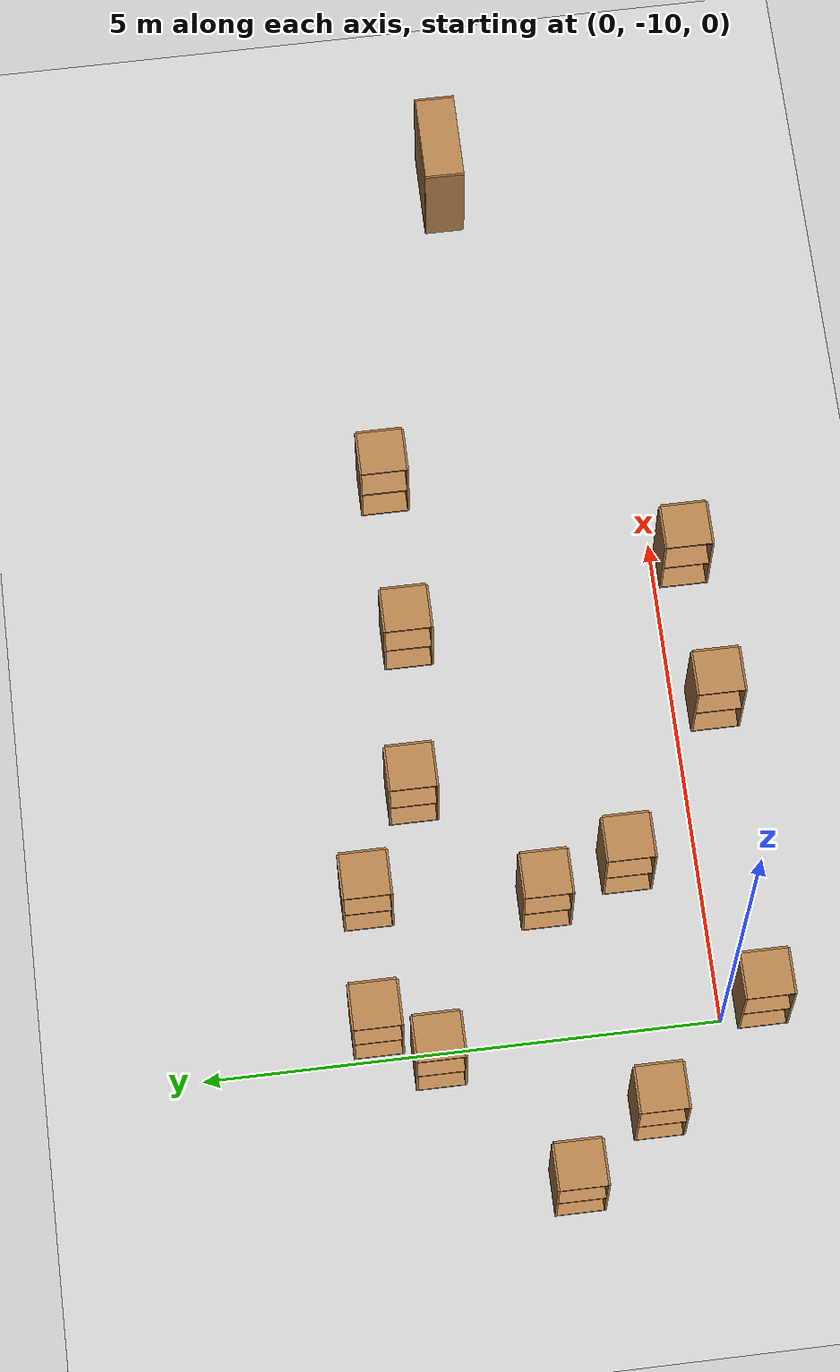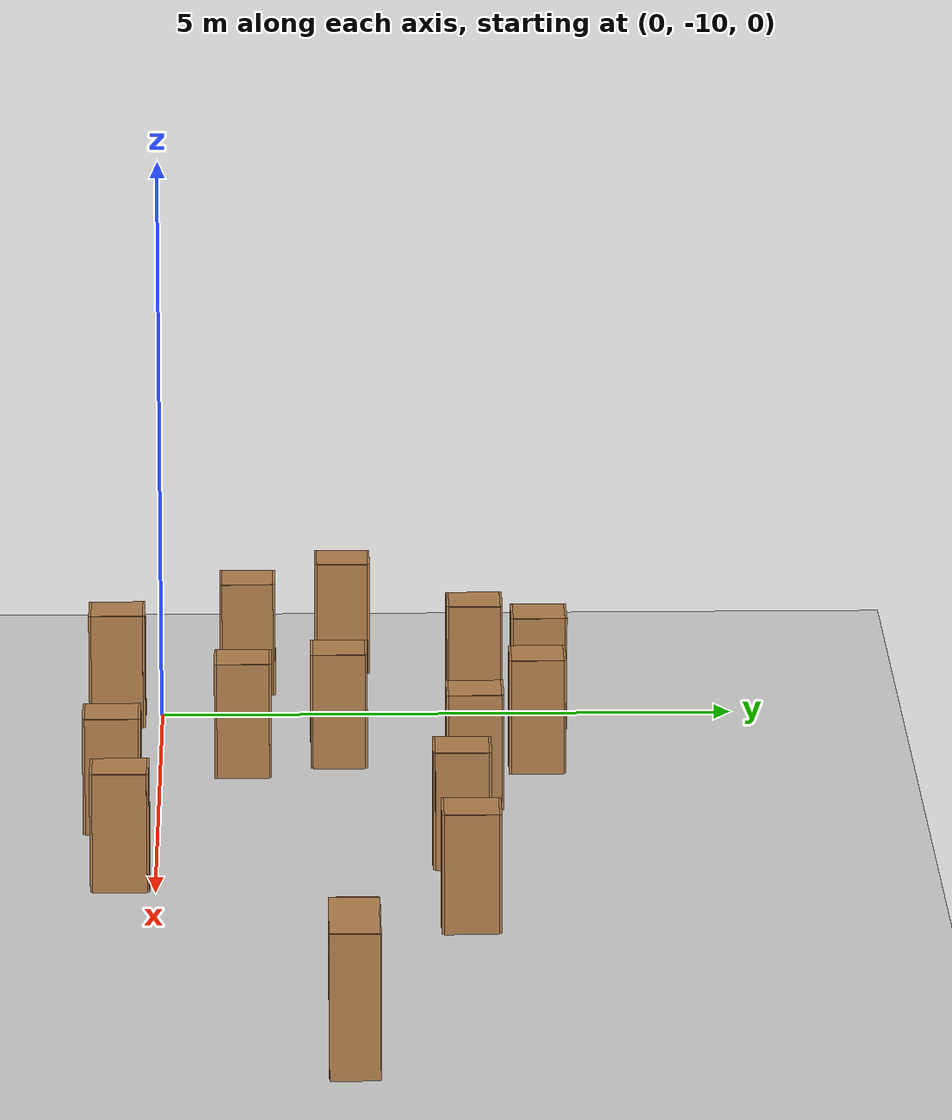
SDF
<sdf version="1.6">
 <world name="default">
  <model name="ground_plane">
   <static>1</static>
   <link name="link">
    <collision name="collision">
     <geometry><plane><normal>0 0 1</normal><size>100 100</size></plane></geometry>
     <surface><friction><ode><mu>100</mu><mu2>50</mu2></ode></friction></surface>
    </collision>
    <visual name="visual">
     <cast_shadows>0</cast_shadows>
     <geometry><plane><normal>0 0 1</normal><size>100 100</size></plane></geometry>
     <material>
      <script><uri>file://media/materials/scripts/gazebo.material</uri><name>Gazebo/Grey</name></script>
     </material>
    </visual>
   </link>
  </model>
  <model name="cabinet_5">
   <static>1</static>
   <link name="cabinet_bottom_plate">
    <inertial>
     <pose>0 0 -1 0 -0 0</pose>
     <inertia><ixx>2.05</ixx><ixy>0</ixy><ixz>0</ixz><iyy>2.05</iyy><iyz>0</iyz><izz>2.05</izz></inertia>
     <mass>25</mass>
    </inertial>
    <collision name="cabinet_bottom_plate_geom">
     <pose>0 0 0.01 0 -0 0</pose>
     <geometry><box><size>0.45 0.45 0.02</size></box></geometry>
    </collision>
    <visual name="cabinet_bottom_plate_geom_visual">
     <pose>0 0 0.01 0 -0 0</pose>
     <geometry><box><size>0.45 0.45 0.02</size></box></geometry>
     <material>
      <script><uri>file://media/materials/scripts/gazebo.material</uri><name>Gazebo/Wood</name></script>
     </material>
    </visual>
    <collision name="cabinet_bottom_plate_geom_cabinet_back_plate">
     <pose>0.235 0 0.51 0 -0 0</pose>
     <geometry><box><size>0.02 0.45 1.02</size></box></geometry>
    </collision>
    <visual name="cabinet_bottom_plate_geom_cabinet_back_plate_visual">
     <pose>0.235 0 0.51 0 -0 0</pose>
     <geometry><box><size>0.02 0.45 1.02</size></box></geometry>
     <material>
      <script><uri>file://media/materials/scripts/gazebo.material</uri><name>Gazebo/Wood</name></script>
     </material>
    </visual>
    <collision name="cabinet_bottom_plate_geom_cabinet_left_plate">
     <pose>0 0.235 0.51 0 -0 0</pose>
     <geometry><box><size>0.45 0.02 1.02</size></box></geometry>
    </collision>
    <visual name="cabinet_bottom_plate_geom_cabinet_left_plate_visual">
     <pose>0 0.235 0.51 0 -0 0</pose>
     <geometry><box><size>0.45 0.02 1.02</size></box></geometry>
     <material>
      <script><uri>file://media/materials/scripts/gazebo.material</uri><name>Gazebo/Wood</name></script>
     </material>
    </visual>
    <collision name="cabinet_bottom_plate_geom_cabinet_middle_plate">
     <pose>0 0 0.51 0 -0 0</pose>
     <geometry><box><size>0.45 0.45 0.02</size></box></geometry>
    </collision>
    <visual name="cabinet_bottom_plate_geom_cabinet_middle_plate_visual">
     <pose>0 0 0.51 0 -0 0</pose>
     <geometry><box><size>0.45 0.45 0.02</size></box></geometry>
     <material>
      <script><uri>file://media/materials/scripts/gazebo.material</uri><name>Gazebo/Wood</name></script>
     </material>
    </visual>
    <collision name="cabinet_bottom_plate_geom_cabinet_right_plate">
     <pose>0 -0.235 0.51 0 -0 0</pose>
     <geometry><box><size>0.45 0.02 1.02</size></box></geometry>
    </collision>
    <visual name="cabinet_bottom_plate_geom_cabinet_right_plate_visual">
     <pose>0 -0.235 0.51 0 -0 0</pose>
     <geometry><box><size>0.45 0.02 1.02</size></box></geometry>
     <material>
      <script><uri>file://media/materials/scripts/gazebo.material</uri><name>Gazebo/Wood</name></script>
     </material>
    </visual>
    <collision name="cabinet_bottom_plate_geom_cabinet_top_plate">
     <pose>0 0 1.01 0 -0 0</pose>
     <geometry><box><size>0.45 0.45 0.02</size></box></geometry>
    </collision>
    <visual name="cabinet_bottom_plate_geom_cabinet_top_plate_visual">
     <pose>0 0 1.01 0 -0 0</pose>
     <geometry><box><size>0.45 0.45 0.02</size></box></geometry>
     <material>
      <script><uri>file://media/materials/scripts/gazebo.material</uri><name>Gazebo/Wood</name></script>
     </material>
    </visual>
   </link>
   <pose>-0.832207 -9.25202 0 0 -0 0</pose>
  </model>
  <model name="cabinet_6">
   <static>1</static>
   <link name="cabinet_bottom_plate">
    <inertial>
     <pose>0 0 -1 0 -0 0</pose>
     <inertia><ixx>2.05</ixx><ixy>0</ixy><ixz>0</ixz><iyy>2.05</iyy><iyz>0</iyz><izz>2.05</izz></inertia>
     <mass>25</mass>
    </inertial>
    <collision name="cabinet_bottom_plate_geom">
     <pose>0 0 0.01 0 -0 0</pose>
     <geometry><box><size>0.45 0.45 0.02</size></box></geometry>
    </collision>
    <visual name="cabinet_bottom_plate_geom_visual">
     <pose>0 0 0.01 0 -0 0</pose>
     <geometry><box><size>0.45 0.45 0.02</size></box></geometry>
     <material>
      <script><uri>file://media/materials/scripts/gazebo.material</uri><name>Gazebo/Wood</name></script>
     </material>
    </visual>
    <collision name="cabinet_bottom_plate_geom_cabinet_back_plate">
     <pose>0.235 0 0.51 0 -0 0</pose>
     <geometry><box><size>0.02 0.45 1.02</size></box></geometry>
    </collision>
    <visual name="cabinet_bottom_plate_geom_cabinet_back_plate_visual">
     <pose>0.235 0 0.51 0 -0 0</pose>
     <geometry><box><size>0.02 0.45 1.02</size></box></geometry>
     <material>
      <script><uri>file://media/materials/scripts/gazebo.material</uri><name>Gazebo/Wood</name></script>
     </material>
    </visual>
    <collision name="cabinet_bottom_plate_geom_cabinet_left_plate">
     <pose>0 0.235 0.51 0 -0 0</pose>
     <geometry><box><size>0.45 0.02 1.02</size></box></geometry>
    </collision>
    <visual name="cabinet_bottom_plate_geom_cabinet_left_plate_visual">
     <pose>0 0.235 0.51 0 -0 0</pose>
     <geometry><box><size>0.45 0.02 1.02</size></box></geometry>
     <material>
      <script><uri>file://media/materials/scripts/gazebo.material</uri><name>Gazebo/Wood</name></script>
     </material>
    </visual>
    <collision name="cabinet_bottom_plate_geom_cabinet_middle_plate">
     <pose>0 0 0.51 0 -0 0</pose>
     <geometry><box><size>0.45 0.45 0.02</size></box></geometry>
    </collision>
    <visual name="cabinet_bottom_plate_geom_cabinet_middle_plate_visual">
     <pose>0 0 0.51 0 -0 0</pose>
     <geometry><box><size>0.45 0.45 0.02</size></box></geometry>
     <material>
      <script><uri>file://media/materials/scripts/gazebo.material</uri><name>Gazebo/Wood</name></script>
     </material>
    </visual>
    <collision name="cabinet_bottom_plate_geom_cabinet_right_plate">
     <pose>0 -0.235 0.51 0 -0 0</pose>
     <geometry><box><size>0.45 0.02 1.02</size></box></geometry>
    </collision>
    <visual name="cabinet_bottom_plate_geom_cabinet_right_plate_visual">
     <pose>0 -0.235 0.51 0 -0 0</pose>
     <geometry><box><size>0.45 0.02 1.02</size></box></geometry>
     <material>
      <script><uri>file://media/materials/scripts/gazebo.material</uri><name>Gazebo/Wood</name></script>
     </material>
    </visual>
    <collision name="cabinet_bottom_plate_geom_cabinet_top_plate">
     <pose>0 0 1.01 0 -0 0</pose>
     <geometry><box><size>0.45 0.45 0.02</size></box></geometry>
    </collision>
    <visual name="cabinet_bottom_plate_geom_cabinet_top_plate_visual">
     <pose>0 0 1.01 0 -0 0</pose>
     <geometry><box><size>0.45 0.45 0.02</size></box></geometry>
     <material>
      <script><uri>file://media/materials/scripts/gazebo.material</uri><name>Gazebo/Wood</name></script>
     </material>
    </visual>
   </link>
   <pose>0.135041 -10.3908 0 0 -0 0</pose>
  </model>
  <model name="cabinet_7">
   <static>1</static>
   <link name="cabinet_bottom_plate">
    <inertial>
     <pose>0 0 -1 0 -0 0</pose>
     <inertia><ixx>2.05</ixx><ixy>0</ixy><ixz>0</ixz><iyy>2.05</iyy><iyz>0</iyz><izz>2.05</izz></inertia>
     <mass>25</mass>
    </inertial>
    <collision name="cabinet_bottom_plate_geom">
     <pose>0 0 0.01 0 -0 0</pose>
     <geometry><box><size>0.45 0.45 0.02</size></box></geometry>
    </collision>
    <visual name="cabinet_bottom_plate_geom_visual">
     <pose>0 0 0.01 0 -0 0</pose>
     <geometry><box><size>0.45 0.45 0.02</size></box></geometry>
     <material>
      <script><uri>file://media/materials/scripts/gazebo.material</uri><name>Gazebo/Wood</name></script>
     </material>
    </visual>
    <collision name="cabinet_bottom_plate_geom_cabinet_back_plate">
     <pose>0.235 0 0.51 0 -0 0</pose>
     <geometry><box><size>0.02 0.45 1.02</size></box></geometry>
    </collision>
    <visual name="cabinet_bottom_plate_geom_cabinet_back_plate_visual">
     <pose>0.235 0 0.51 0 -0 0</pose>
     <geometry><box><size>0.02 0.45 1.02</size></box></geometry>
     <material>
      <script><uri>file://media/materials/scripts/gazebo.material</uri><name>Gazebo/Wood</name></script>
     </material>
    </visual>
    <collision name="cabinet_bottom_plate_geom_cabinet_left_plate">
     <pose>0 0.235 0.51 0 -0 0</pose>
     <geometry><box><size>0.45 0.02 1.02</size></box></geometry>
    </collision>
    <visual name="cabinet_bottom_plate_geom_cabinet_left_plate_visual">
     <pose>0 0.235 0.51 0 -0 0</pose>
     <geometry><box><size>0.45 0.02 1.02</size></box></geometry>
     <material>
      <script><uri>file://media/materials/scripts/gazebo.material</uri><name>Gazebo/Wood</name></script>
     </material>
    </visual>
    <collision name="cabinet_bottom_plate_geom_cabinet_middle_plate">
     <pose>0 0 0.51 0 -0 0</pose>
     <geometry><box><size>0.45 0.45 0.02</size></box></geometry>
    </collision>
    <visual name="cabinet_bottom_plate_geom_cabinet_middle_plate_visual">
     <pose>0 0 0.51 0 -0 0</pose>
     <geometry><box><size>0.45 0.45 0.02</size></box></geometry>
     <material>
      <script><uri>file://media/materials/scripts/gazebo.material</uri><name>Gazebo/Wood</name></script>
     </material>
    </visual>
    <collision name="cabinet_bottom_plate_geom_cabinet_right_plate">
     <pose>0 -0.235 0.51 0 -0 0</pose>
     <geometry><box><size>0.45 0.02 1.02</size></box></geometry>
    </collision>
    <visual name="cabinet_bottom_plate_geom_cabinet_right_plate_visual">
     <pose>0 -0.235 0.51 0 -0 0</pose>
     <geometry><box><size>0.45 0.02 1.02</size></box></geometry>
     <material>
      <script><uri>file://media/materials/scripts/gazebo.material</uri><name>Gazebo/Wood</name></script>
     </material>
    </visual>
    <collision name="cabinet_bottom_plate_geom_cabinet_top_plate">
     <pose>0 0 1.01 0 -0 0</pose>
     <geometry><box><size>0.45 0.45 0.02</size></box></geometry>
    </collision>
    <visual name="cabinet_bottom_plate_geom_cabinet_top_plate_visual">
     <pose>0 0 1.01 0 -0 0</pose>
     <geometry><box><size>0.45 0.45 0.02</size></box></geometry>
     <material>
      <script><uri>file://media/materials/scripts/gazebo.material</uri><name>Gazebo/Wood</name></script>
     </material>
    </visual>
   </link>
   <pose>1.62665 -9.28432 0 0 -0 0</pose>
  </model>
  <model name="cabinet_8">
   <static>1</static>
   <link name="cabinet_bottom_plate">
    <inertial>
     <pose>0 0 -1 0 -0 0</pose>
     <inertia><ixx>2.05</ixx><ixy>0</ixy><ixz>0</ixz><iyy>2.05</iyy><iyz>0</iyz><izz>2.05</izz></inertia>
     <mass>25</mass>
    </inertial>
    <collision name="cabinet_bottom_plate_geom">
     <pose>0 0 0.01 0 -0 0</pose>
     <geometry><box><size>0.45 0.45 0.02</size></box></geometry>
    </collision>
    <visual name="cabinet_bottom_plate_geom_visual">
     <pose>0 0 0.01 0 -0 0</pose>
     <geometry><box><size>0.45 0.45 0.02</size></box></geometry>
     <material>
      <script><uri>file://media/materials/scripts/gazebo.material</uri><name>Gazebo/Wood</name></script>
     </material>
    </visual>
    <collision name="cabinet_bottom_plate_geom_cabinet_back_plate">
     <pose>0.235 0 0.51 0 -0 0</pose>
     <geometry><box><size>0.02 0.45 1.02</size></box></geometry>
    </collision>
    <visual name="cabinet_bottom_plate_geom_cabinet_back_plate_visual">
     <pose>0.235 0 0.51 0 -0 0</pose>
     <geometry><box><size>0.02 0.45 1.02</size></box></geometry>
     <material>
      <script><uri>file://media/materials/scripts/gazebo.material</uri><name>Gazebo/Wood</name></script>
     </material>
    </visual>
    <collision name="cabinet_bottom_plate_geom_cabinet_left_plate">
     <pose>0 0.235 0.51 0 -0 0</pose>
     <geometry><box><size>0.45 0.02 1.02</size></box></geometry>
    </collision>
    <visual name="cabinet_bottom_plate_geom_cabinet_left_plate_visual">
     <pose>0 0.235 0.51 0 -0 0</pose>
     <geometry><box><size>0.45 0.02 1.02</size></box></geometry>
     <material>
      <script><uri>file://media/materials/scripts/gazebo.material</uri><name>Gazebo/Wood</name></script>
     </material>
    </visual>
    <collision name="cabinet_bottom_plate_geom_cabinet_middle_plate">
     <pose>0 0 0.51 0 -0 0</pose>
     <geometry><box><size>0.45 0.45 0.02</size></box></geometry>
    </collision>
    <visual name="cabinet_bottom_plate_geom_cabinet_middle_plate_visual">
     <pose>0 0 0.51 0 -0 0</pose>
     <geometry><box><size>0.45 0.45 0.02</size></box></geometry>
     <material>
      <script><uri>file://media/materials/scripts/gazebo.material</uri><name>Gazebo/Wood</name></script>
     </material>
    </visual>
    <collision name="cabinet_bottom_plate_geom_cabinet_right_plate">
     <pose>0 -0.235 0.51 0 -0 0</pose>
     <geometry><box><size>0.45 0.02 1.02</size></box></geometry>
    </collision>
    <visual name="cabinet_bottom_plate_geom_cabinet_right_plate_visual">
     <pose>0 -0.235 0.51 0 -0 0</pose>
     <geometry><box><size>0.45 0.02 1.02</size></box></geometry>
     <material>
      <script><uri>file://media/materials/scripts/gazebo.material</uri><name>Gazebo/Wood</name></script>
     </material>
    </visual>
    <collision name="cabinet_bottom_plate_geom_cabinet_top_plate">
     <pose>0 0 1.01 0 -0 0</pose>
     <geometry><box><size>0.45 0.45 0.02</size></box></geometry>
    </collision>
    <visual name="cabinet_bottom_plate_geom_cabinet_top_plate_visual">
     <pose>0 0 1.01 0 -0 0</pose>
     <geometry><box><size>0.45 0.45 0.02</size></box></geometry>
     <material>
      <script><uri>file://media/materials/scripts/gazebo.material</uri><name>Gazebo/Wood</name></script>
     </material>
    </visual>
   </link>
   <pose>3.19671 -10.3835 0 0 -0 0</pose>
  </model>
  <model name="cabinet_9">
   <static>1</static>
   <link name="cabinet_bottom_plate">
    <inertial>
     <pose>0 0 -1 0 -0 0</pose>
     <inertia><ixx>2.05</ixx><ixy>0</ixy><ixz>0</ixz><iyy>2.05</iyy><iyz>0</iyz><izz>2.05</izz></inertia>
     <mass>25</mass>
    </inertial>
    <collision name="cabinet_bottom_plate_geom">
     <pose>0 0 0.01 0 -0 0</pose>
     <geometry><box><size>0.45 0.45 0.02</size></box></geometry>
    </collision>
    <visual name="cabinet_bottom_plate_geom_visual">
     <pose>0 0 0.01 0 -0 0</pose>
     <geometry><box><size>0.45 0.45 0.02</size></box></geometry>
     <material>
      <script><uri>file://media/materials/scripts/gazebo.material</uri><name>Gazebo/Wood</name></script>
     </material>
    </visual>
    <collision name="cabinet_bottom_plate_geom_cabinet_back_plate">
     <pose>0.235 0 0.51 0 -0 0</pose>
     <geometry><box><size>0.02 0.45 1.02</size></box></geometry>
    </collision>
    <visual name="cabinet_bottom_plate_geom_cabinet_back_plate_visual">
     <pose>0.235 0 0.51 0 -0 0</pose>
     <geometry><box><size>0.02 0.45 1.02</size></box></geometry>
     <material>
      <script><uri>file://media/materials/scripts/gazebo.material</uri><name>Gazebo/Wood</name></script>
     </material>
    </visual>
    <collision name="cabinet_bottom_plate_geom_cabinet_left_plate">
     <pose>0 0.235 0.51 0 -0 0</pose>
     <geometry><box><size>0.45 0.02 1.02</size></box></geometry>
    </collision>
    <visual name="cabinet_bottom_plate_geom_cabinet_left_plate_visual">
     <pose>0 0.235 0.51 0 -0 0</pose>
     <geometry><box><size>0.45 0.02 1.02</size></box></geometry>
     <material>
      <script><uri>file://media/materials/scripts/gazebo.material</uri><name>Gazebo/Wood</name></script>
     </material>
    </visual>
    <collision name="cabinet_bottom_plate_geom_cabinet_middle_plate">
     <pose>0 0 0.51 0 -0 0</pose>
     <geometry><box><size>0.45 0.45 0.02</size></box></geometry>
    </collision>
    <visual name="cabinet_bottom_plate_geom_cabinet_middle_plate_visual">
     <pose>0 0 0.51 0 -0 0</pose>
     <geometry><box><size>0.45 0.45 0.02</size></box></geometry>
     <material>
      <script><uri>file://media/materials/scripts/gazebo.material</uri><name>Gazebo/Wood</name></script>
     </material>
    </visual>
    <collision name="cabinet_bottom_plate_geom_cabinet_right_plate">
     <pose>0 -0.235 0.51 0 -0 0</pose>
     <geometry><box><size>0.45 0.02 1.02</size></box></geometry>
    </collision>
    <visual name="cabinet_bottom_plate_geom_cabinet_right_plate_visual">
     <pose>0 -0.235 0.51 0 -0 0</pose>
     <geometry><box><size>0.45 0.02 1.02</size></box></geometry>
     <material>
      <script><uri>file://media/materials/scripts/gazebo.material</uri><name>Gazebo/Wood</name></script>
     </material>
    </visual>
    <collision name="cabinet_bottom_plate_geom_cabinet_top_plate">
     <pose>0 0 1.01 0 -0 0</pose>
     <geometry><box><size>0.45 0.45 0.02</size></box></geometry>
    </collision>
    <visual name="cabinet_bottom_plate_geom_cabinet_top_plate_visual">
     <pose>0 0 1.01 0 -0 0</pose>
     <geometry><box><size>0.45 0.45 0.02</size></box></geometry>
     <material>
      <script><uri>file://media/materials/scripts/gazebo.material</uri><name>Gazebo/Wood</name></script>
     </material>
    </visual>
   </link>
   <pose>4.75602 -10.2927 0 0 -0 0</pose>
  </model>
  <model name="cabinet_16">
   <static>1</static>
   <link name="cabinet_bottom_plate">
    <inertial>
     <pose>0 0 -1 0 -0 0</pose>
     <inertia><ixx>2.05</ixx><ixy>0</ixy><ixz>0</ixz><iyy>2.05</iyy><iyz>0</iyz><izz>2.05</izz></inertia>
     <mass>25</mass>
    </inertial>
    <collision name="cabinet_bottom_plate_geom">
     <pose>0 0 0.01 0 -0 0</pose>
     <geometry><box><size>0.45 0.45 0.02</size></box></geometry>
    </collision>
    <visual name="cabinet_bottom_plate_geom_visual">
     <pose>0 0 0.01 0 -0 0</pose>
     <geometry><box><size>0.45 0.45 0.02</size></box></geometry>
     <material>
      <script><uri>file://media/materials/scripts/gazebo.material</uri><name>Gazebo/Wood</name></script>
     </material>
    </visual>
    <collision name="cabinet_bottom_plate_geom_cabinet_back_plate">
     <pose>0.235 0 0.51 0 -0 0</pose>
     <geometry><box><size>0.02 0.45 1.02</size></box></geometry>
    </collision>
    <visual name="cabinet_bottom_plate_geom_cabinet_back_plate_visual">
     <pose>0.235 0 0.51 0 -0 0</pose>
     <geometry><box><size>0.02 0.45 1.02</size></box></geometry>
     <material>
      <script><uri>file://media/materials/scripts/gazebo.material</uri><name>Gazebo/Wood</name></script>
     </material>
    </visual>
    <collision name="cabinet_bottom_plate_geom_cabinet_left_plate">
     <pose>0 0.235 0.51 0 -0 0</pose>
     <geometry><box><size>0.45 0.02 1.02</size></box></geometry>
    </collision>
    <visual name="cabinet_bottom_plate_geom_cabinet_left_plate_visual">
     <pose>0 0.235 0.51 0 -0 0</pose>
     <geometry><box><size>0.45 0.02 1.02</size></box></geometry>
     <material>
      <script><uri>file://media/materials/scripts/gazebo.material</uri><name>Gazebo/Wood</name></script>
     </material>
    </visual>
    <collision name="cabinet_bottom_plate_geom_cabinet_middle_plate">
     <pose>0 0 0.51 0 -0 0</pose>
     <geometry><box><size>0.45 0.45 0.02</size></box></geometry>
    </collision>
    <visual name="cabinet_bottom_plate_geom_cabinet_middle_plate_visual">
     <pose>0 0 0.51 0 -0 0</pose>
     <geometry><box><size>0.45 0.45 0.02</size></box></geometry>
     <material>
      <script><uri>file://media/materials/scripts/gazebo.material</uri><name>Gazebo/Wood</name></script>
     </material>
    </visual>
    <collision name="cabinet_bottom_plate_geom_cabinet_right_plate">
     <pose>0 -0.235 0.51 0 -0 0</pose>
     <geometry><box><size>0.45 0.02 1.02</size></box></geometry>
    </collision>
    <visual name="cabinet_bottom_plate_geom_cabinet_right_plate_visual">
     <pose>0 -0.235 0.51 0 -0 0</pose>
     <geometry><box><size>0.45 0.02 1.02</size></box></geometry>
     <material>
      <script><uri>file://media/materials/scripts/gazebo.material</uri><name>Gazebo/Wood</name></script>
     </material>
    </visual>
    <collision name="cabinet_bottom_plate_geom_cabinet_top_plate">
     <pose>0 0 1.01 0 -0 0</pose>
     <geometry><box><size>0.45 0.45 0.02</size></box></geometry>
    </collision>
    <visual name="cabinet_bottom_plate_geom_cabinet_top_plate_visual">
     <pose>0 0 1.01 0 -0 0</pose>
     <geometry><box><size>0.45 0.45 0.02</size></box></geometry>
     <material>
      <script><uri>file://media/materials/scripts/gazebo.material</uri><name>Gazebo/Wood</name></script>
     </material>
    </visual>
   </link>
   <pose>-1.46317 -8.40915 0 0 -0 0</pose>
  </model>
  <model name="cabinet_17">
   <static>1</static>
   <link name="cabinet_bottom_plate">
    <inertial>
     <pose>0 0 -1 0 -0 0</pose>
     <inertia><ixx>2.05</ixx><ixy>0</ixy><ixz>0</ixz><iyy>2.05</iyy><iyz>0</iyz><izz>2.05</izz></inertia>
     <mass>25</mass>
    </inertial>
    <collision name="cabinet_bottom_plate_geom">
     <pose>0 0 0.01 0 -0 0</pose>
     <geometry><box><size>0.45 0.45 0.02</size></box></geometry>
    </collision>
    <visual name="cabinet_bottom_plate_geom_visual">
     <pose>0 0 0.01 0 -0 0</pose>
     <geometry><box><size>0.45 0.45 0.02</size></box></geometry>
     <material>
      <script><uri>file://media/materials/scripts/gazebo.material</uri><name>Gazebo/Wood</name></script>
     </material>
    </visual>
    <collision name="cabinet_bottom_plate_geom_cabinet_back_plate">
     <pose>0.235 0 0.51 0 -0 0</pose>
     <geometry><box><size>0.02 0.45 1.02</size></box></geometry>
    </collision>
    <visual name="cabinet_bottom_plate_geom_cabinet_back_plate_visual">
     <pose>0.235 0 0.51 0 -0 0</pose>
     <geometry><box><size>0.02 0.45 1.02</size></box></geometry>
     <material>
      <script><uri>file://media/materials/scripts/gazebo.material</uri><name>Gazebo/Wood</name></script>
     </material>
    </visual>
    <collision name="cabinet_bottom_plate_geom_cabinet_left_plate">
     <pose>0 0.235 0.51 0 -0 0</pose>
     <geometry><box><size>0.45 0.02 1.02</size></box></geometry>
    </collision>
    <visual name="cabinet_bottom_plate_geom_cabinet_left_plate_visual">
     <pose>0 0.235 0.51 0 -0 0</pose>
     <geometry><box><size>0.45 0.02 1.02</size></box></geometry>
     <material>
      <script><uri>file://media/materials/scripts/gazebo.material</uri><name>Gazebo/Wood</name></script>
     </material>
    </visual>
    <collision name="cabinet_bottom_plate_geom_cabinet_middle_plate">
     <pose>0 0 0.51 0 -0 0</pose>
     <geometry><box><size>0.45 0.45 0.02</size></box></geometry>
    </collision>
    <visual name="cabinet_bottom_plate_geom_cabinet_middle_plate_visual">
     <pose>0 0 0.51 0 -0 0</pose>
     <geometry><box><size>0.45 0.45 0.02</size></box></geometry>
     <material>
      <script><uri>file://media/materials/scripts/gazebo.material</uri><name>Gazebo/Wood</name></script>
     </material>
    </visual>
    <collision name="cabinet_bottom_plate_geom_cabinet_right_plate">
     <pose>0 -0.235 0.51 0 -0 0</pose>
     <geometry><box><size>0.45 0.02 1.02</size></box></geometry>
    </collision>
    <visual name="cabinet_bottom_plate_geom_cabinet_right_plate_visual">
     <pose>0 -0.235 0.51 0 -0 0</pose>
     <geometry><box><size>0.45 0.02 1.02</size></box></geometry>
     <material>
      <script><uri>file://media/materials/scripts/gazebo.material</uri><name>Gazebo/Wood</name></script>
     </material>
    </visual>
    <collision name="cabinet_bottom_plate_geom_cabinet_top_plate">
     <pose>0 0 1.01 0 -0 0</pose>
     <geometry><box><size>0.45 0.45 0.02</size></box></geometry>
    </collision>
    <visual name="cabinet_bottom_plate_geom_cabinet_top_plate_visual">
     <pose>0 0 1.01 0 -0 0</pose>
     <geometry><box><size>0.45 0.45 0.02</size></box></geometry>
     <material>
      <script><uri>file://media/materials/scripts/gazebo.material</uri><name>Gazebo/Wood</name></script>
     </material>
    </visual>
   </link>
   <pose>-0.100328 -7.25662 0 0 -0 0</pose>
  </model>
  <model name="cabinet_18">
   <static>1</static>
   <link name="cabinet_bottom_plate">
    <inertial>
     <pose>0 0 -1 0 -0 0</pose>
     <inertia><ixx>2.05</ixx><ixy>0</ixy><ixz>0</ixz><iyy>2.05</iyy><iyz>0</iyz><izz>2.05</izz></inertia>
     <mass>25</mass>
    </inertial>
    <collision name="cabinet_bottom_plate_geom">
     <pose>0 0 0.01 0 -0 0</pose>
     <geometry><box><size>0.45 0.45 0.02</size></box></geometry>
    </collision>
    <visual name="cabinet_bottom_plate_geom_visual">
     <pose>0 0 0.01 0 -0 0</pose>
     <geometry><box><size>0.45 0.45 0.02</size></box></geometry>
     <material>
      <script><uri>file://media/materials/scripts/gazebo.material</uri><name>Gazebo/Wood</name></script>
     </material>
    </visual>
    <collision name="cabinet_bottom_plate_geom_cabinet_back_plate">
     <pose>0.235 0 0.51 0 -0 0</pose>
     <geometry><box><size>0.02 0.45 1.02</size></box></geometry>
    </collision>
    <visual name="cabinet_bottom_plate_geom_cabinet_back_plate_visual">
     <pose>0.235 0 0.51 0 -0 0</pose>
     <geometry><box><size>0.02 0.45 1.02</size></box></geometry>
     <material>
      <script><uri>file://media/materials/scripts/gazebo.material</uri><name>Gazebo/Wood</name></script>
     </material>
    </visual>
    <collision name="cabinet_bottom_plate_geom_cabinet_left_plate">
     <pose>0 0.235 0.51 0 -0 0</pose>
     <geometry><box><size>0.45 0.02 1.02</size></box></geometry>
    </collision>
    <visual name="cabinet_bottom_plate_geom_cabinet_left_plate_visual">
     <pose>0 0.235 0.51 0 -0 0</pose>
     <geometry><box><size>0.45 0.02 1.02</size></box></geometry>
     <material>
      <script><uri>file://media/materials/scripts/gazebo.material</uri><name>Gazebo/Wood</name></script>
     </material>
    </visual>
    <collision name="cabinet_bottom_plate_geom_cabinet_middle_plate">
     <pose>0 0 0.51 0 -0 0</pose>
     <geometry><box><size>0.45 0.45 0.02</size></box></geometry>
    </collision>
    <visual name="cabinet_bottom_plate_geom_cabinet_middle_plate_visual">
     <pose>0 0 0.51 0 -0 0</pose>
     <geometry><box><size>0.45 0.45 0.02</size></box></geometry>
     <material>
      <script><uri>file://media/materials/scripts/gazebo.material</uri><name>Gazebo/Wood</name></script>
     </material>
    </visual>
    <collision name="cabinet_bottom_plate_geom_cabinet_right_plate">
     <pose>0 -0.235 0.51 0 -0 0</pose>
     <geometry><box><size>0.45 0.02 1.02</size></box></geometry>
    </collision>
    <visual name="cabinet_bottom_plate_geom_cabinet_right_plate_visual">
     <pose>0 -0.235 0.51 0 -0 0</pose>
     <geometry><box><size>0.45 0.02 1.02</size></box></geometry>
     <material>
      <script><uri>file://media/materials/scripts/gazebo.material</uri><name>Gazebo/Wood</name></script>
     </material>
    </visual>
    <collision name="cabinet_bottom_plate_geom_cabinet_top_plate">
     <pose>0 0 1.01 0 -0 0</pose>
     <geometry><box><size>0.45 0.45 0.02</size></box></geometry>
    </collision>
    <visual name="cabinet_bottom_plate_geom_cabinet_top_plate_visual">
     <pose>0 0 1.01 0 -0 0</pose>
     <geometry><box><size>0.45 0.45 0.02</size></box></geometry>
     <material>
      <script><uri>file://media/materials/scripts/gazebo.material</uri><name>Gazebo/Wood</name></script>
     </material>
    </visual>
   </link>
   <pose>1.36028 -8.45727 0 0 -0 0</pose>
  </model>
  <model name="cabinet_19">
   <static>1</static>
   <link name="cabinet_bottom_plate">
    <inertial>
     <pose>0 0 -1 0 -0 0</pose>
     <inertia><ixx>2.05</ixx><ixy>0</ixy><ixz>0</ixz><iyy>2.05</iyy><iyz>0</iyz><izz>2.05</izz></inertia>
     <mass>25</mass>
    </inertial>
    <collision name="cabinet_bottom_plate_geom">
     <pose>0 0 0.01 0 -0 0</pose>
     <geometry><box><size>0.45 0.45 0.02</size></box></geometry>
    </collision>
    <visual name="cabinet_bottom_plate_geom_visual">
     <pose>0 0 0.01 0 -0 0</pose>
     <geometry><box><size>0.45 0.45 0.02</size></box></geometry>
     <material>
      <script><uri>file://media/materials/scripts/gazebo.material</uri><name>Gazebo/Wood</name></script>
     </material>
    </visual>
    <collision name="cabinet_bottom_plate_geom_cabinet_back_plate">
     <pose>0.235 0 0.51 0 -0 0</pose>
     <geometry><box><size>0.02 0.45 1.02</size></box></geometry>
    </collision>
    <visual name="cabinet_bottom_plate_geom_cabinet_back_plate_visual">
     <pose>0.235 0 0.51 0 -0 0</pose>
     <geometry><box><size>0.02 0.45 1.02</size></box></geometry>
     <material>
      <script><uri>file://media/materials/scripts/gazebo.material</uri><name>Gazebo/Wood</name></script>
     </material>
    </visual>
    <collision name="cabinet_bottom_plate_geom_cabinet_left_plate">
     <pose>0 0.235 0.51 0 -0 0</pose>
     <geometry><box><size>0.45 0.02 1.02</size></box></geometry>
    </collision>
    <visual name="cabinet_bottom_plate_geom_cabinet_left_plate_visual">
     <pose>0 0.235 0.51 0 -0 0</pose>
     <geometry><box><size>0.45 0.02 1.02</size></box></geometry>
     <material>
      <script><uri>file://media/materials/scripts/gazebo.material</uri><name>Gazebo/Wood</name></script>
     </material>
    </visual>
    <collision name="cabinet_bottom_plate_geom_cabinet_middle_plate">
     <pose>0 0 0.51 0 -0 0</pose>
     <geometry><box><size>0.45 0.45 0.02</size></box></geometry>
    </collision>
    <visual name="cabinet_bottom_plate_geom_cabinet_middle_plate_visual">
     <pose>0 0 0.51 0 -0 0</pose>
     <geometry><box><size>0.45 0.45 0.02</size></box></geometry>
     <material>
      <script><uri>file://media/materials/scripts/gazebo.material</uri><name>Gazebo/Wood</name></script>
     </material>
    </visual>
    <collision name="cabinet_bottom_plate_geom_cabinet_right_plate">
     <pose>0 -0.235 0.51 0 -0 0</pose>
     <geometry><box><size>0.45 0.02 1.02</size></box></geometry>
    </collision>
    <visual name="cabinet_bottom_plate_geom_cabinet_right_plate_visual">
     <pose>0 -0.235 0.51 0 -0 0</pose>
     <geometry><box><size>0.45 0.02 1.02</size></box></geometry>
     <material>
      <script><uri>file://media/materials/scripts/gazebo.material</uri><name>Gazebo/Wood</name></script>
     </material>
    </visual>
    <collision name="cabinet_bottom_plate_geom_cabinet_top_plate">
     <pose>0 0 1.01 0 -0 0</pose>
     <geometry><box><size>0.45 0.45 0.02</size></box></geometry>
    </collision>
    <visual name="cabinet_bottom_plate_geom_cabinet_top_plate_visual">
     <pose>0 0 1.01 0 -0 0</pose>
     <geometry><box><size>0.45 0.45 0.02</size></box></geometry>
     <material>
      <script><uri>file://media/materials/scripts/gazebo.material</uri><name>Gazebo/Wood</name></script>
     </material>
    </visual>
   </link>
   <pose>2.58205 -7.30976 0 0 -0 0</pose>
  </model>
  <model name="cabinet_20">
   <static>1</static>
   <link name="cabinet_bottom_plate">
    <inertial>
     <pose>0 0 -1 0 -0 0</pose>
     <inertia><ixx>2.05</ixx><ixy>0</ixy><ixz>0</ixz><iyy>2.05</iyy><iyz>0</iyz><izz>2.05</izz></inertia>
     <mass>25</mass>
    </inertial>
    <collision name="cabinet_bottom_plate_geom">
     <pose>0 0 0.01 0 -0 0</pose>
     <geometry><box><size>0.45 0.45 0.02</size></box></geometry>
    </collision>
    <visual name="cabinet_bottom_plate_geom_visual">
     <pose>0 0 0.01 0 -0 0</pose>
     <geometry><box><size>0.45 0.45 0.02</size></box></geometry>
     <material>
      <script><uri>file://media/materials/scripts/gazebo.material</uri><name>Gazebo/Wood</name></script>
     </material>
    </visual>
    <collision name="cabinet_bottom_plate_geom_cabinet_back_plate">
     <pose>0.235 0 0.51 0 -0 0</pose>
     <geometry><box><size>0.02 0.45 1.02</size></box></geometry>
    </collision>
    <visual name="cabinet_bottom_plate_geom_cabinet_back_plate_visual">
     <pose>0.235 0 0.51 0 -0 0</pose>
     <geometry><box><size>0.02 0.45 1.02</size></box></geometry>
     <material>
      <script><uri>file://media/materials/scripts/gazebo.material</uri><name>Gazebo/Wood</name></script>
     </material>
    </visual>
    <collision name="cabinet_bottom_plate_geom_cabinet_left_plate">
     <pose>0 0.235 0.51 0 -0 0</pose>
     <geometry><box><size>0.45 0.02 1.02</size></box></geometry>
    </collision>
    <visual name="cabinet_bottom_plate_geom_cabinet_left_plate_visual">
     <pose>0 0.235 0.51 0 -0 0</pose>
     <geometry><box><size>0.45 0.02 1.02</size></box></geometry>
     <material>
      <script><uri>file://media/materials/scripts/gazebo.material</uri><name>Gazebo/Wood</name></script>
     </material>
    </visual>
    <collision name="cabinet_bottom_plate_geom_cabinet_middle_plate">
     <pose>0 0 0.51 0 -0 0</pose>
     <geometry><box><size>0.45 0.45 0.02</size></box></geometry>
    </collision>
    <visual name="cabinet_bottom_plate_geom_cabinet_middle_plate_visual">
     <pose>0 0 0.51 0 -0 0</pose>
     <geometry><box><size>0.45 0.45 0.02</size></box></geometry>
     <material>
      <script><uri>file://media/materials/scripts/gazebo.material</uri><name>Gazebo/Wood</name></script>
     </material>
    </visual>
    <collision name="cabinet_bottom_plate_geom_cabinet_right_plate">
     <pose>0 -0.235 0.51 0 -0 0</pose>
     <geometry><box><size>0.45 0.02 1.02</size></box></geometry>
    </collision>
    <visual name="cabinet_bottom_plate_geom_cabinet_right_plate_visual">
     <pose>0 -0.235 0.51 0 -0 0</pose>
     <geometry><box><size>0.45 0.02 1.02</size></box></geometry>
     <material>
      <script><uri>file://media/materials/scripts/gazebo.material</uri><name>Gazebo/Wood</name></script>
     </material>
    </visual>
    <collision name="cabinet_bottom_plate_geom_cabinet_top_plate">
     <pose>0 0 1.01 0 -0 0</pose>
     <geometry><box><size>0.45 0.45 0.02</size></box></geometry>
    </collision>
    <visual name="cabinet_bottom_plate_geom_cabinet_top_plate_visual">
     <pose>0 0 1.01 0 -0 0</pose>
     <geometry><box><size>0.45 0.45 0.02</size></box></geometry>
     <material>
      <script><uri>file://media/materials/scripts/gazebo.material</uri><name>Gazebo/Wood</name></script>
     </material>
    </visual>
   </link>
   <pose>4.20938 -7.45141 0 0 -0 0</pose>
  </model>
  <model name="cabinet_21">
   <static>1</static>
   <link name="cabinet_bottom_plate">
    <inertial>
     <pose>0 0 -1 0 -0 0</pose>
     <inertia><ixx>2.05</ixx><ixy>0</ixy><ixz>0</ixz><iyy>2.05</iyy><iyz>0</iyz><izz>2.05</izz></inertia>
     <mass>25</mass>
    </inertial>
    <collision name="cabinet_bottom_plate_geom">
     <pose>0 0 0.01 0 -0 0</pose>
     <geometry><box><size>0.45 0.45 0.02</size></box></geometry>
    </collision>
    <visual name="cabinet_bottom_plate_geom_visual">
     <pose>0 0 0.01 0 -0 0</pose>
     <geometry><box><size>0.45 0.45 0.02</size></box></geometry>
     <material>
      <script><uri>file://media/materials/scripts/gazebo.material</uri><name>Gazebo/Wood</name></script>
     </material>
    </visual>
    <collision name="cabinet_bottom_plate_geom_cabinet_back_plate">
     <pose>0.235 0 0.51 0 -0 0</pose>
     <geometry><box><size>0.02 0.45 1.02</size></box></geometry>
    </collision>
    <visual name="cabinet_bottom_plate_geom_cabinet_back_plate_visual">
     <pose>0.235 0 0.51 0 -0 0</pose>
     <geometry><box><size>0.02 0.45 1.02</size></box></geometry>
     <material>
      <script><uri>file://media/materials/scripts/gazebo.material</uri><name>Gazebo/Wood</name></script>
     </material>
    </visual>
    <collision name="cabinet_bottom_plate_geom_cabinet_left_plate">
     <pose>0 0.235 0.51 0 -0 0</pose>
     <geometry><box><size>0.45 0.02 1.02</size></box></geometry>
    </collision>
    <visual name="cabinet_bottom_plate_geom_cabinet_left_plate_visual">
     <pose>0 0.235 0.51 0 -0 0</pose>
     <geometry><box><size>0.45 0.02 1.02</size></box></geometry>
     <material>
      <script><uri>file://media/materials/scripts/gazebo.material</uri><name>Gazebo/Wood</name></script>
     </material>
    </visual>
    <collision name="cabinet_bottom_plate_geom_cabinet_middle_plate">
     <pose>0 0 0.51 0 -0 0</pose>
     <geometry><box><size>0.45 0.45 0.02</size></box></geometry>
    </collision>
    <visual name="cabinet_bottom_plate_geom_cabinet_middle_plate_visual">
     <pose>0 0 0.51 0 -0 0</pose>
     <geometry><box><size>0.45 0.45 0.02</size></box></geometry>
     <material>
      <script><uri>file://media/materials/scripts/gazebo.material</uri><name>Gazebo/Wood</name></script>
     </material>
    </visual>
    <collision name="cabinet_bottom_plate_geom_cabinet_right_plate">
     <pose>0 -0.235 0.51 0 -0 0</pose>
     <geometry><box><size>0.45 0.02 1.02</size></box></geometry>
    </collision>
    <visual name="cabinet_bottom_plate_geom_cabinet_right_plate_visual">
     <pose>0 -0.235 0.51 0 -0 0</pose>
     <geometry><box><size>0.45 0.02 1.02</size></box></geometry>
     <material>
      <script><uri>file://media/materials/scripts/gazebo.material</uri><name>Gazebo/Wood</name></script>
     </material>
    </visual>
    <collision name="cabinet_bottom_plate_geom_cabinet_top_plate">
     <pose>0 0 1.01 0 -0 0</pose>
     <geometry><box><size>0.45 0.45 0.02</size></box></geometry>
    </collision>
    <visual name="cabinet_bottom_plate_geom_cabinet_top_plate_visual">
     <pose>0 0 1.01 0 -0 0</pose>
     <geometry><box><size>0.45 0.45 0.02</size></box></geometry>
     <material>
      <script><uri>file://media/materials/scripts/gazebo.material</uri><name>Gazebo/Wood</name></script>
     </material>
    </visual>
   </link>
   <pose>5.90025 -7.40968 0 0 -0 0</pose>
  </model>
  <model name="cabinet_29">
   <static>1</static>
   <link name="cabinet_bottom_plate">
    <inertial>
     <pose>0 0 -1 0 -0 0</pose>
     <inertia><ixx>2.05</ixx><ixy>0</ixy><ixz>0</ixz><iyy>2.05</iyy><iyz>0</iyz><izz>2.05</izz></inertia>
     <mass>25</mass>
    </inertial>
    <collision name="cabinet_bottom_plate_geom">
     <pose>0 0 0.01 0 -0 0</pose>
     <geometry><box><size>0.45 0.45 0.02</size></box></geometry>
    </collision>
    <visual name="cabinet_bottom_plate_geom_visual">
     <pose>0 0 0.01 0 -0 0</pose>
     <geometry><box><size>0.45 0.45 0.02</size></box></geometry>
     <material>
      <script><uri>file://media/materials/scripts/gazebo.material</uri><name>Gazebo/Wood</name></script>
     </material>
    </visual>
    <collision name="cabinet_bottom_plate_geom_cabinet_back_plate">
     <pose>0.235 0 0.51 0 -0 0</pose>
     <geometry><box><size>0.02 0.45 1.02</size></box></geometry>
    </collision>
    <visual name="cabinet_bottom_plate_geom_cabinet_back_plate_visual">
     <pose>0.235 0 0.51 0 -0 0</pose>
     <geometry><box><size>0.02 0.45 1.02</size></box></geometry>
     <material>
      <script><uri>file://media/materials/scripts/gazebo.material</uri><name>Gazebo/Wood</name></script>
     </material>
    </visual>
    <collision name="cabinet_bottom_plate_geom_cabinet_left_plate">
     <pose>0 0.235 0.51 0 -0 0</pose>
     <geometry><box><size>0.45 0.02 1.02</size></box></geometry>
    </collision>
    <visual name="cabinet_bottom_plate_geom_cabinet_left_plate_visual">
     <pose>0 0.235 0.51 0 -0 0</pose>
     <geometry><box><size>0.45 0.02 1.02</size></box></geometry>
     <material>
      <script><uri>file://media/materials/scripts/gazebo.material</uri><name>Gazebo/Wood</name></script>
     </material>
    </visual>
    <collision name="cabinet_bottom_plate_geom_cabinet_middle_plate">
     <pose>0 0 0.51 0 -0 0</pose>
     <geometry><box><size>0.45 0.45 0.02</size></box></geometry>
    </collision>
    <visual name="cabinet_bottom_plate_geom_cabinet_middle_plate_visual">
     <pose>0 0 0.51 0 -0 0</pose>
     <geometry><box><size>0.45 0.45 0.02</size></box></geometry>
     <material>
      <script><uri>file://media/materials/scripts/gazebo.material</uri><name>Gazebo/Wood</name></script>
     </material>
    </visual>
    <collision name="cabinet_bottom_plate_geom_cabinet_right_plate">
     <pose>0 -0.235 0.51 0 -0 0</pose>
     <geometry><box><size>0.45 0.02 1.02</size></box></geometry>
    </collision>
    <visual name="cabinet_bottom_plate_geom_cabinet_right_plate_visual">
     <pose>0 -0.235 0.51 0 -0 0</pose>
     <geometry><box><size>0.45 0.02 1.02</size></box></geometry>
     <material>
      <script><uri>file://media/materials/scripts/gazebo.material</uri><name>Gazebo/Wood</name></script>
     </material>
    </visual>
    <collision name="cabinet_bottom_plate_geom_cabinet_top_plate">
     <pose>0 0 1.01 0 -0 0</pose>
     <geometry><box><size>0.45 0.45 0.02</size></box></geometry>
    </collision>
    <visual name="cabinet_bottom_plate_geom_cabinet_top_plate_visual">
     <pose>0 0 1.01 0 -0 0</pose>
     <geometry><box><size>0.45 0.45 0.02</size></box></geometry>
     <material>
      <script><uri>file://media/materials/scripts/gazebo.material</uri><name>Gazebo/Wood</name></script>
     </material>
    </visual>
   </link>
   <pose>0.276278 -6.70128 0 0 -0 0</pose>
  </model>
  <model name="cabinet_30">
   <static>1</static>
   <link name="cabinet_bottom_plate">
    <inertial>
     <pose>0 0 -1 0 -0 0</pose>
     <inertia><ixx>2.05</ixx><ixy>0</ixy><ixz>0</ixz><iyy>2.05</iyy><iyz>0</iyz><izz>2.05</izz></inertia>
     <mass>25</mass>
    </inertial>
    <collision name="cabinet_bottom_plate_geom">
     <pose>0 0 0.01 0 -0 0</pose>
     <geometry><box><size>0.45 0.45 0.02</size></box></geometry>
    </collision>
    <visual name="cabinet_bottom_plate_geom_visual">
     <pose>0 0 0.01 0 -0 0</pose>
     <geometry><box><size>0.45 0.45 0.02</size></box></geometry>
     <material>
      <script><uri>file://media/materials/scripts/gazebo.material</uri><name>Gazebo/Wood</name></script>
     </material>
    </visual>
    <collision name="cabinet_bottom_plate_geom_cabinet_back_plate">
     <pose>0.235 0 0.51 0 -0 0</pose>
     <geometry><box><size>0.02 0.45 1.02</size></box></geometry>
    </collision>
    <visual name="cabinet_bottom_plate_geom_cabinet_back_plate_visual">
     <pose>0.235 0 0.51 0 -0 0</pose>
     <geometry><box><size>0.02 0.45 1.02</size></box></geometry>
     <material>
      <script><uri>file://media/materials/scripts/gazebo.material</uri><name>Gazebo/Wood</name></script>
     </material>
    </visual>
    <collision name="cabinet_bottom_plate_geom_cabinet_left_plate">
     <pose>0 0.235 0.51 0 -0 0</pose>
     <geometry><box><size>0.45 0.02 1.02</size></box></geometry>
    </collision>
    <visual name="cabinet_bottom_plate_geom_cabinet_left_plate_visual">
     <pose>0 0.235 0.51 0 -0 0</pose>
     <geometry><box><size>0.45 0.02 1.02</size></box></geometry>
     <material>
      <script><uri>file://media/materials/scripts/gazebo.material</uri><name>Gazebo/Wood</name></script>
     </material>
    </visual>
    <collision name="cabinet_bottom_plate_geom_cabinet_middle_plate">
     <pose>0 0 0.51 0 -0 0</pose>
     <geometry><box><size>0.45 0.45 0.02</size></box></geometry>
    </collision>
    <visual name="cabinet_bottom_plate_geom_cabinet_middle_plate_visual">
     <pose>0 0 0.51 0 -0 0</pose>
     <geometry><box><size>0.45 0.45 0.02</size></box></geometry>
     <material>
      <script><uri>file://media/materials/scripts/gazebo.material</uri><name>Gazebo/Wood</name></script>
     </material>
    </visual>
    <collision name="cabinet_bottom_plate_geom_cabinet_right_plate">
     <pose>0 -0.235 0.51 0 -0 0</pose>
     <geometry><box><size>0.45 0.02 1.02</size></box></geometry>
    </collision>
    <visual name="cabinet_bottom_plate_geom_cabinet_right_plate_visual">
     <pose>0 -0.235 0.51 0 -0 0</pose>
     <geometry><box><size>0.45 0.02 1.02</size></box></geometry>
     <material>
      <script><uri>file://media/materials/scripts/gazebo.material</uri><name>Gazebo/Wood</name></script>
     </material>
    </visual>
    <collision name="cabinet_bottom_plate_geom_cabinet_top_plate">
     <pose>0 0 1.01 0 -0 0</pose>
     <geometry><box><size>0.45 0.45 0.02</size></box></geometry>
    </collision>
    <visual name="cabinet_bottom_plate_geom_cabinet_top_plate_visual">
     <pose>0 0 1.01 0 -0 0</pose>
     <geometry><box><size>0.45 0.45 0.02</size></box></geometry>
     <material>
      <script><uri>file://media/materials/scripts/gazebo.material</uri><name>Gazebo/Wood</name></script>
     </material>
    </visual>
   </link>
   <pose>1.55752 -6.7489 0 0 -0 0</pose>
  </model>
  <model name="bookshelf_13">
   <static>1</static>
   <link name="link">
    <inertial><mass>1</mass></inertial>
    <collision name="back">
     <pose>0 0.005 0.6 0 -0 0</pose>
     <geometry><box><size>0.9 0.01 1.2</size></box></geometry>
    </collision>
    <visual name="visual1">
     <pose>0 0.005 0.6 0 -0 0</pose>
     <geometry><box><size>0.9 0.01 1.2</size></box></geometry>
     <material>
      <script><uri>file://media/materials/scripts/gazebo.material</uri><name>Gazebo/Wood</name></script>
     </material>
    </visual>
    <collision name="left_side">
     <pose>0.45 -0.195 0.6 0 -0 0</pose>
     <geometry><box><size>0.02 0.4 1.2</size></box></geometry>
    </collision>
    <visual name="visual2">
     <pose>0.45 -0.195 0.6 0 -0 0</pose>
     <geometry><box><size>0.02 0.4 1.2</size></box></geometry>
     <material>
      <script><uri>file://media/materials/scripts/gazebo.material</uri><name>Gazebo/Wood</name></script>
     </material>
    </visual>
    <collision name="right_side">
     <pose>-0.45 -0.195 0.6 0 -0 0</pose>
     <geometry><box><size>0.02 0.4 1.2</size></box></geometry>
    </collision>
    <visual name="visual3">
     <pose>-0.45 -0.195 0.6 0 -0 0</pose>
     <geometry><box><size>0.02 0.4 1.2</size></box></geometry>
     <material>
      <script><uri>file://media/materials/scripts/gazebo.material</uri><name>Gazebo/Wood</name></script>
     </material>
    </visual>
    <collision name="bottom">
     <pose>0 -0.195 0.03 0 -0 0</pose>
     <geometry><box><size>0.88 0.4 0.06</size></box></geometry>
    </collision>
    <visual name="visual4">
     <pose>0 -0.195 0.03 0 -0 0</pose>
     <geometry><box><size>0.88 0.4 0.06</size></box></geometry>
     <material>
      <script><uri>file://media/materials/scripts/gazebo.material</uri><name>Gazebo/Wood</name></script>
     </material>
    </visual>
    <collision name="top">
     <pose>0 -0.195 1.19 0 -0 0</pose>
     <geometry><box><size>0.88 0.4 0.02</size></box></geometry>
    </collision>
    <visual name="visual5">
     <pose>0 -0.195 1.19 0 -0 0</pose>
     <geometry><box><size>0.88 0.4 0.02</size></box></geometry>
     <material>
      <script><uri>file://media/materials/scripts/gazebo.material</uri><name>Gazebo/Wood</name></script>
     </material>
    </visual>
    <collision name="low_shelf">
     <pose>0 -0.195 0.43 0 -0 0</pose>
     <geometry><box><size>0.88 0.4 0.02</size></box></geometry>
    </collision>
    <visual name="visual6">
     <pose>0 -0.195 0.43 0 -0 0</pose>
     <geometry><box><size>0.88 0.4 0.02</size></box></geometry>
     <material>
      <script><uri>file://media/materials/scripts/gazebo.material</uri><name>Gazebo/Wood</name></script>
     </material>
    </visual>
    <collision name="high_shelf">
     <pose>0 -0.195 0.8 0 -0 0</pose>
     <geometry><box><size>0.88 0.4 0.02</size></box></geometry>
    </collision>
    <visual name="visual7">
     <pose>0 -0.195 0.8 0 -0 0</pose>
     <geometry><box><size>0.88 0.4 0.02</size></box></geometry>
     <material>
      <script><uri>file://media/materials/scripts/gazebo.material</uri><name>Gazebo/Wood</name></script>
     </material>
    </visual>
   </link>
   <pose>9.24627 -8.19533 0 0 -0 0</pose>
  </model>
 </world>
</sdf>
